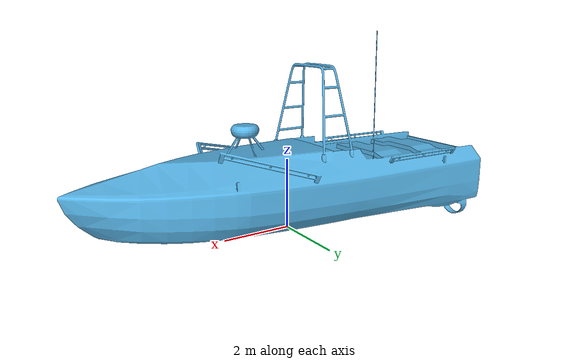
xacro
<?xml version="1.0"?>
<robot xmlns:xacro="http://ros.org/wiki/xacro" name="cora">
  <xacro:arg name="namespace" default="cora"/>
  <xacro:property name="namespace" value="$(arg namespace)" scope="global" />

  <link name="base_link">
  </link>

  <joint name="${namespace}/base_link" type="fixed">
    <parent link="base_link"/>
    <child link="${namespace}/base_link"/>
    <!-- Adjust the visual/collision to match water height -->
    <origin xyz="0 0 1" rpy="0 0 0"/>
  </joint>

  <link name="${namespace}/base_link">
    <visual>
      <origin xyz="0 0 0" rpy="0 0 0" />
      <geometry>
        <mesh filename="package://cora_description/models/meshes/base.dae"/>
      </geometry>
      <material name="base_material">
        <diffuse>1.0 1.0 1.0</diffuse>
        <specular>1.0 1.0 1.0</specular>
        <pbr>
          <metal>
            <albedo_map>package://cora_description/models/materials/textures/Boat_Albedo.png</albedo_map>
            <metalness_map>package://cora_description/models/materials/textures/Boat_Metalness.png</metalness_map>
            <roughness_map>package://cora_description/models/materials/textures/Boat_Roughness.png</roughness_map>
          </metal>
        </pbr>
        <!-- fallback to script if no PBR support-->
        <script>
          <uri>package://cora_description/models/materials/scripts/</uri>
          <uri>package://cora_description/models/materials/textures/</uri>
          <name>UrbanTile/Boat_Diffuse</name>
        </script>
      </material>
    </visual>

    <collision name="collision">
      <geometry>
        <box size="12.21 3.58 2.84" />
      </geometry>
    </collision>

    <inertial>
      <mass value="33000.0"/>
      <inertia ixx="20700.0" ixy="0.0" ixz="0.0" iyy="420000.0" iyz="0.0" izz="420000.0"/>
    </inertial>
  </link>

</robot>
